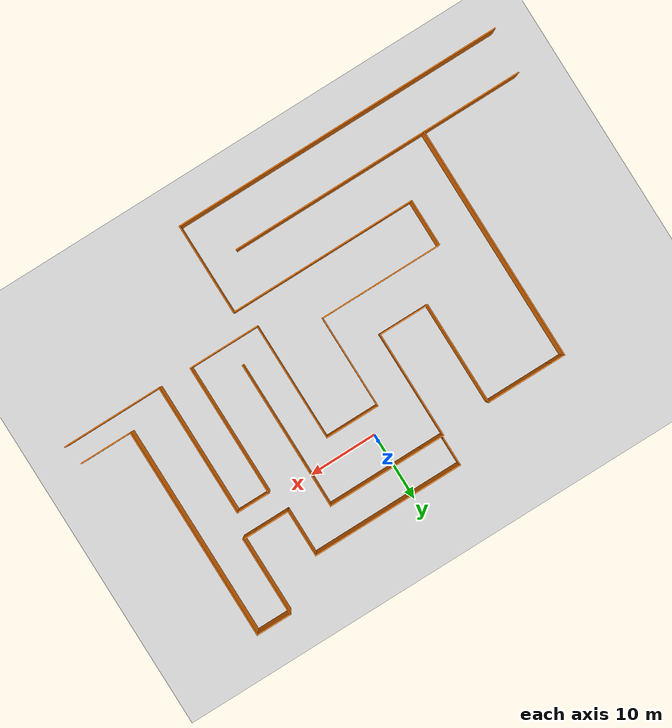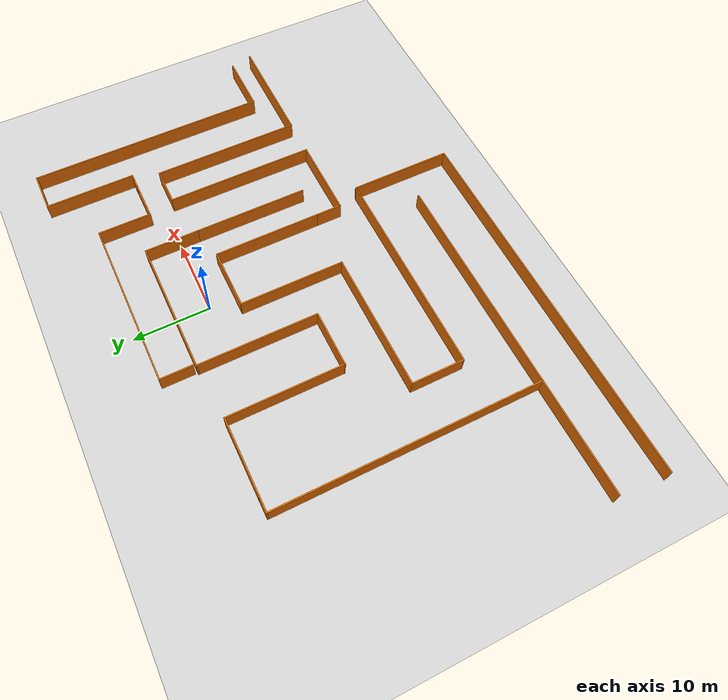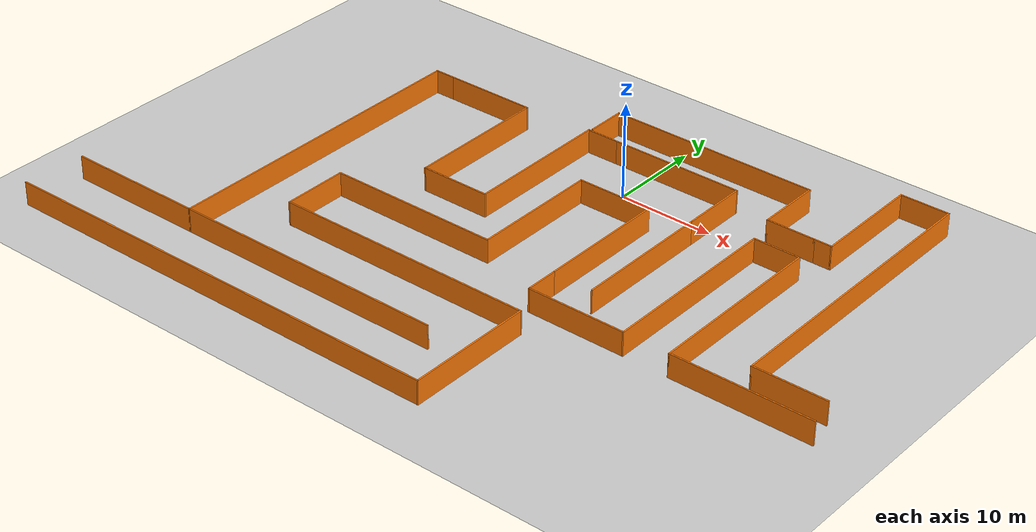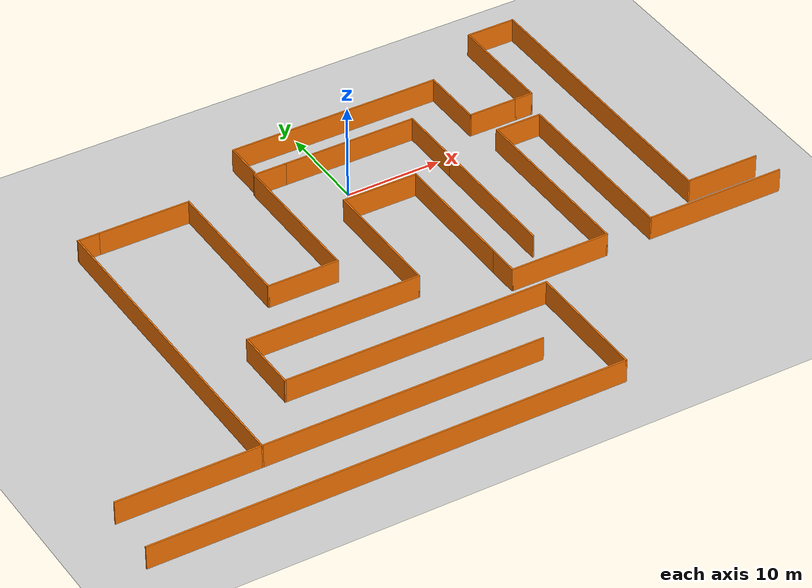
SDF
<sdf version="1.6">
 <world name="default">
  <light name="sun" type="directional">
   <pose>0 0 10 0 -0 0</pose>
   <diffuse>0.8 0.8 0.8 1</diffuse>
   <specular>0.2 0.2 0.2 1</specular>
   <attenuation>
    <range>1000</range>
    <constant>0.9</constant>
    <linear>0.01</linear>
    <quadratic>0.001</quadratic>
   </attenuation>
   <direction>-0.5 0.1 -0.9</direction>
  </light>
  <model name="ground_plane">
   <static>1</static>
   <link name="link">
    <collision name="collision">
     <geometry><plane><normal>0 0 1</normal><size>100 100</size></plane></geometry>
     <surface>
      <contact><collide_bitmask>65535</collide_bitmask></contact>
      <friction><ode><mu>100</mu><mu2>50</mu2></ode></friction>
     </surface>
    </collision>
    <visual name="visual">
     <cast_shadows>0</cast_shadows>
     <geometry><plane><normal>0 0 1</normal><size>100 100</size></plane></geometry>
     <material>
      <script><uri>file://media/materials/scripts/gazebo.material</uri><name>Gazebo/Grey</name></script>
     </material>
    </visual>
   </link>
  </model>
  <gravity>0 0 -9.8</gravity>
  <magnetic_field>6e-06 2.3e-05 -4.2e-05</magnetic_field>
  <atmosphere type="adiabatic"/>
  <physics name="default_physics" default="0" type="ode">
   <max_step_size>0.001</max_step_size>
   <real_time_factor>1</real_time_factor>
   <real_time_update_rate>1000</real_time_update_rate>
  </physics>
  <scene><ambient>0.4 0.4 0.4 1</ambient><background>0.7 0.7 0.7 1</background><shadows>1</shadows></scene>
  <audio><device>default</device></audio>
  <spherical_coordinates>
   <surface_model>EARTH_WGS84</surface_model>
   <latitude_deg>0</latitude_deg>
   <longitude_deg>0</longitude_deg>
   <elevation>0</elevation>
   <heading_deg>0</heading_deg>
  </spherical_coordinates>
  <model name="Maze">
   <pose>-3.25872 -11.7281 0 0 -0 0</pose>
   <link name="Wall_100">
    <collision name="Wall_100_Collision">
     <geometry><box><size>7.25 0.15 2.5</size></box></geometry>
     <pose>0 0 1.25 0 -0 0</pose>
    </collision>
    <visual name="Wall_100_Visual">
     <pose>0 0 1.25 0 -0 0</pose>
     <geometry><box><size>7.25 0.15 2.5</size></box></geometry>
     <material>
      <script><uri>file://media/materials/scripts/gazebo.material</uri><name>Gazebo/Grey</name></script>
      <ambient>0.996078 0.47451 0.0196078 1</ambient>
     </material>
     <meta><layer>0</layer></meta>
    </visual>
    <pose>13.05 12.6653 0 0 -0 1.5708</pose>
   </link>
   <link name="Wall_101">
    <collision name="Wall_101_Collision">
     <geometry><box><size>14.25 0.15 2.5</size></box></geometry>
     <pose>0 0 1.25 0 -0 0</pose>
    </collision>
    <visual name="Wall_101_Visual">
     <pose>0 0 1.25 0 -0 0</pose>
     <geometry><box><size>14.25 0.15 2.5</size></box></geometry>
     <material>
      <script><uri>file://media/materials/scripts/gazebo.material</uri><name>Gazebo/Grey</name></script>
      <ambient>0.996078 0.47451 0.0196078 1</ambient>
     </material>
     <meta><layer>0</layer></meta>
    </visual>
    <pose>6 16.2153 0 0 -0 3.14159</pose>
   </link>
   <link name="Wall_102">
    <collision name="Wall_102_Collision">
     <geometry><box><size>3.5 0.15 2.5</size></box></geometry>
     <pose>0 0 1.25 0 -0 0</pose>
    </collision>
    <visual name="Wall_102_Visual">
     <pose>0 0 1.25 0 -0 0</pose>
     <geometry><box><size>3.5 0.15 2.5</size></box></geometry>
     <material>
      <script><uri>file://media/materials/scripts/gazebo.material</uri><name>Gazebo/Grey</name></script>
      <ambient>0.996078 0.47451 0.0196078 1</ambient>
     </material>
     <meta><layer>0</layer></meta>
    </visual>
    <pose>-2.725 16.2153 0 0 -0 3.14159</pose>
   </link>
   <link name="Wall_103">
    <collision name="Wall_103_Collision">
     <geometry><box><size>15.75 0.15 2.5</size></box></geometry>
     <pose>0 0 1.25 0 -0 0</pose>
    </collision>
    <visual name="Wall_103_Visual">
     <pose>0 0 1.25 0 -0 0</pose>
     <geometry><box><size>15.75 0.15 2.5</size></box></geometry>
     <material>
      <script><uri>file://media/materials/scripts/gazebo.material</uri><name>Gazebo/Grey</name></script>
      <ambient>0.996078 0.47451 0.0196078 1</ambient>
     </material>
     <meta><layer>0</layer></meta>
    </visual>
    <pose>-4.4 8.41528 0 0 -0 -1.5708</pose>
   </link>
   <link name="Wall_104">
    <collision name="Wall_104_Collision">
     <geometry><box><size>7.5 0.15 2.5</size></box></geometry>
     <pose>0 0 1.25 0 -0 0</pose>
    </collision>
    <visual name="Wall_104_Visual">
     <pose>0 0 1.25 0 -0 0</pose>
     <geometry><box><size>7.5 0.15 2.5</size></box></geometry>
     <material>
      <script><uri>file://media/materials/scripts/gazebo.material</uri><name>Gazebo/Grey</name></script>
      <ambient>0.996078 0.47451 0.0196078 1</ambient>
     </material>
     <meta><layer>0</layer></meta>
    </visual>
    <pose>-8.075 0.615279 0 0 -0 3.14159</pose>
   </link>
   <link name="Wall_105">
    <collision name="Wall_105_Collision">
     <geometry><box><size>15.25 0.15 2.5</size></box></geometry>
     <pose>0 0 1.25 0 -0 0</pose>
    </collision>
    <visual name="Wall_105_Visual">
     <pose>0 0 1.25 0 -0 0</pose>
     <geometry><box><size>15.25 0.15 2.5</size></box></geometry>
     <material>
      <script><uri>file://media/materials/scripts/gazebo.material</uri><name>Gazebo/Grey</name></script>
      <ambient>0.996078 0.47451 0.0196078 1</ambient>
     </material>
     <meta><layer>0</layer></meta>
    </visual>
    <pose>-11.75 8.16528 0 0 -0 1.5708</pose>
   </link>
   <link name="Wall_106">
    <collision name="Wall_106_Collision">
     <geometry><box><size>9.75 0.15 2.5</size></box></geometry>
     <pose>0 0 1.25 0 -0 0</pose>
    </collision>
    <visual name="Wall_106_Visual">
     <pose>0 0 1.25 0 -0 0</pose>
     <geometry><box><size>9.75 0.15 2.5</size></box></geometry>
     <material>
      <script><uri>file://media/materials/scripts/gazebo.material</uri><name>Gazebo/Grey</name></script>
      <ambient>0.996078 0.47451 0.0196078 1</ambient>
     </material>
     <meta><layer>0</layer></meta>
    </visual>
    <pose>-16.55 15.7153 0 0 -0 3.14159</pose>
   </link>
   <link name="Wall_107">
    <collision name="Wall_107_Collision">
     <geometry><box><size>2.25 0.15 2.5</size></box></geometry>
     <pose>0 0 1.25 0 -0 0</pose>
    </collision>
    <visual name="Wall_107_Visual">
     <pose>0 0 1.25 0 -0 0</pose>
     <geometry><box><size>2.25 0.15 2.5</size></box></geometry>
     <material>
      <script><uri>file://media/materials/scripts/gazebo.material</uri><name>Gazebo/Grey</name></script>
      <ambient>0.996078 0.47451 0.0196078 1</ambient>
     </material>
     <meta><layer>0</layer></meta>
    </visual>
    <pose>-22.4 15.7153 0 0 -0 3.14159</pose>
   </link>
   <link name="Wall_108">
    <collision name="Wall_108_Collision">
     <geometry><box><size>34.75 0.15 2.5</size></box></geometry>
     <pose>0 0 1.25 0 -0 0</pose>
    </collision>
    <visual name="Wall_108_Visual">
     <pose>0 0 1.25 0 -0 0</pose>
     <geometry><box><size>34.75 0.15 2.5</size></box></geometry>
     <material>
      <script><uri>file://media/materials/scripts/gazebo.material</uri><name>Gazebo/Grey</name></script>
      <ambient>0.996078 0.47451 0.0196078 1</ambient>
     </material>
     <meta><layer>0</layer></meta>
    </visual>
    <pose>-23.45 -1.58472 0 0 -0 -1.5708</pose>
   </link>
   <link name="Wall_109">
    <collision name="Wall_109_Collision">
     <geometry><box><size>29.25 0.15 2.5</size></box></geometry>
     <pose>0 0 1.25 0 -0 0</pose>
    </collision>
    <visual name="Wall_109_Visual">
     <pose>0 0 1.25 0 -0 0</pose>
     <geometry><box><size>29.25 0.15 2.5</size></box></geometry>
     <material>
      <script><uri>file://media/materials/scripts/gazebo.material</uri><name>Gazebo/Grey</name></script>
      <ambient>0.996078 0.47451 0.0196078 1</ambient>
     </material>
     <meta><layer>0</layer></meta>
    </visual>
    <pose>-8.9 -18.8847 0 0 -0 0</pose>
   </link>
   <link name="Wall_113">
    <collision name="Wall_113_Collision">
     <geometry><box><size>3.5 0.15 2.5</size></box></geometry>
     <pose>0 0 1.25 0 -0 0</pose>
    </collision>
    <visual name="Wall_113_Visual">
     <pose>0 0 1.25 0 -0 0</pose>
     <geometry><box><size>3.5 0.15 2.5</size></box></geometry>
     <material>
      <script><uri>file://media/materials/scripts/gazebo.material</uri><name>Gazebo/Grey</name></script>
      <ambient>0.996078 0.47451 0.0196078 1</ambient>
     </material>
     <meta><layer>0</layer></meta>
    </visual>
    <pose>8.7 -7.22502 0 0 -0 -1.5708</pose>
   </link>
   <link name="Wall_114">
    <collision name="Wall_114_Collision">
     <geometry><box><size>10.5 0.15 2.5</size></box></geometry>
     <pose>0 0 1.25 0 -0 0</pose>
    </collision>
    <visual name="Wall_114_Visual">
     <pose>0 0 1.25 0 -0 0</pose>
     <geometry><box><size>10.5 0.15 2.5</size></box></geometry>
     <material>
      <script><uri>file://media/materials/scripts/gazebo.material</uri><name>Gazebo/Grey</name></script>
      <ambient>0.996078 0.47451 0.0196078 1</ambient>
     </material>
     <meta><layer>0</layer></meta>
    </visual>
    <pose>13.875 -8.90002 0 0 -0 0</pose>
   </link>
   <link name="Wall_115">
    <collision name="Wall_115_Collision">
     <geometry><box><size>19.5 0.15 2.5</size></box></geometry>
     <pose>0 0 1.25 0 -0 0</pose>
    </collision>
    <visual name="Wall_115_Visual">
     <pose>0 0 1.25 0 -0 0</pose>
     <geometry><box><size>19.5 0.15 2.5</size></box></geometry>
     <material>
      <script><uri>file://media/materials/scripts/gazebo.material</uri><name>Gazebo/Grey</name></script>
      <ambient>0.996078 0.47451 0.0196078 1</ambient>
     </material>
     <meta><layer>0</layer></meta>
    </visual>
    <pose>19.05 0.774975 0 0 -0 1.5708</pose>
   </link>
   <link name="Wall_116">
    <collision name="Wall_116_Collision">
     <geometry><box><size>5 0.15 2.5</size></box></geometry>
     <pose>0 0 1.25 0 -0 0</pose>
    </collision>
    <visual name="Wall_116_Visual">
     <pose>0 0 1.25 0 -0 0</pose>
     <geometry><box><size>5 0.15 2.5</size></box></geometry>
     <material>
      <script><uri>file://media/materials/scripts/gazebo.material</uri><name>Gazebo/Grey</name></script>
      <ambient>0.996078 0.47451 0.0196078 1</ambient>
     </material>
     <meta><layer>0</layer></meta>
    </visual>
    <pose>21.475 10.45 0 0 -0 0</pose>
   </link>
   <link name="Wall_117">
    <collision name="Wall_117_Collision">
     <geometry><box><size>19.5 0.15 2.5</size></box></geometry>
     <pose>0 0 1.25 0 -0 0</pose>
    </collision>
    <visual name="Wall_117_Visual">
     <pose>0 0 1.25 0 -0 0</pose>
     <geometry><box><size>19.5 0.15 2.5</size></box></geometry>
     <material>
      <script><uri>file://media/materials/scripts/gazebo.material</uri><name>Gazebo/Grey</name></script>
      <ambient>0.996078 0.47451 0.0196078 1</ambient>
     </material>
     <meta><layer>0</layer></meta>
    </visual>
    <pose>23.9 0.774975 0 0 -0 -1.5708</pose>
   </link>
   <link name="Wall_118">
    <collision name="Wall_118_Collision">
     <geometry><box><size>14.75 0.15 2.5</size></box></geometry>
     <pose>0 0 1.25 0 -0 0</pose>
    </collision>
    <visual name="Wall_118_Visual">
     <pose>0 0 1.25 0 -0 0</pose>
     <geometry><box><size>14.75 0.15 2.5</size></box></geometry>
     <material>
      <script><uri>file://media/materials/scripts/gazebo.material</uri><name>Gazebo/Grey</name></script>
      <ambient>0.996078 0.47451 0.0196078 1</ambient>
     </material>
     <meta><layer>0</layer></meta>
    </visual>
    <pose>31.2 -8.90002 0 0 -0 0</pose>
   </link>
   <link name="Wall_120">
    <collision name="Wall_120_Collision">
     <geometry><box><size>4.25 0.15 2.5</size></box></geometry>
     <pose>0 0 1.25 0 -0 0</pose>
    </collision>
    <visual name="Wall_120_Visual">
     <pose>0 0 1.25 0 -0 0</pose>
     <geometry><box><size>4.25 0.15 2.5</size></box></geometry>
     <material>
      <script><uri>file://media/materials/scripts/gazebo.material</uri><name>Gazebo/Grey</name></script>
      <ambient>0.996078 0.47451 0.0196078 1</ambient>
     </material>
     <meta><layer>0</layer></meta>
    </visual>
    <pose>-4.19132 18.6347 0 0 -0 1.5708</pose>
   </link>
   <link name="Wall_121">
    <collision name="Wall_121_Collision">
     <geometry><box><size>22.5 0.15 2.5</size></box></geometry>
     <pose>0 0 1.25 0 -0 0</pose>
    </collision>
    <visual name="Wall_121_Visual">
     <pose>0 0 1.25 0 -0 0</pose>
     <geometry><box><size>22.5 0.15 2.5</size></box></geometry>
     <material>
      <script><uri>file://media/materials/scripts/gazebo.material</uri><name>Gazebo/Grey</name></script>
      <ambient>0.996078 0.47451 0.0196078 1</ambient>
     </material>
     <meta><layer>0</layer></meta>
    </visual>
    <pose>6.98368 20.6847 0 0 -0 0</pose>
   </link>
   <link name="Wall_122">
    <collision name="Wall_122_Collision">
     <geometry><box><size>7 0.15 2.5</size></box></geometry>
     <pose>0 0 1.25 0 -0 0</pose>
    </collision>
    <visual name="Wall_122_Visual">
     <pose>0 0 1.25 0 -0 0</pose>
     <geometry><box><size>7 0.15 2.5</size></box></geometry>
     <material>
      <script><uri>file://media/materials/scripts/gazebo.material</uri><name>Gazebo/Grey</name></script>
      <ambient>0.996078 0.47451 0.0196078 1</ambient>
     </material>
     <meta><layer>0</layer></meta>
    </visual>
    <pose>18.1587 17.2597 0 0 -0 -1.5708</pose>
   </link>
   <link name="Wall_123">
    <collision name="Wall_123_Collision">
     <geometry><box><size>5.25 0.15 2.5</size></box></geometry>
     <pose>0 0 1.25 0 -0 0</pose>
    </collision>
    <visual name="Wall_123_Visual">
     <pose>0 0 1.25 0 -0 0</pose>
     <geometry><box><size>5.25 0.15 2.5</size></box></geometry>
     <material>
      <script><uri>file://media/materials/scripts/gazebo.material</uri><name>Gazebo/Grey</name></script>
      <ambient>0.996078 0.47451 0.0196078 1</ambient>
     </material>
     <meta><layer>0</layer></meta>
    </visual>
    <pose>20.7087 13.8347 0 0 -0 0</pose>
   </link>
   <link name="Wall_124">
    <collision name="Wall_124_Collision">
     <geometry><box><size>2 0.15 2.5</size></box></geometry>
     <pose>0 0 1.25 0 -0 0</pose>
    </collision>
    <visual name="Wall_124_Visual">
     <pose>0 0 1.25 0 -0 0</pose>
     <geometry><box><size>2 0.15 2.5</size></box></geometry>
     <material>
      <script><uri>file://media/materials/scripts/gazebo.material</uri><name>Gazebo/Grey</name></script>
      <ambient>0.996078 0.47451 0.0196078 1</ambient>
     </material>
     <meta><layer>0</layer></meta>
    </visual>
    <pose>24.1837 13.8347 0 0 -0 0</pose>
   </link>
   <link name="Wall_125">
    <collision name="Wall_125_Collision">
     <geometry><box><size>11.75 0.15 2.5</size></box></geometry>
     <pose>0 0 1.25 0 -0 0</pose>
    </collision>
    <visual name="Wall_125_Visual">
     <pose>0 0 1.25 0 -0 0</pose>
     <geometry><box><size>11.75 0.15 2.5</size></box></geometry>
     <material>
      <script><uri>file://media/materials/scripts/gazebo.material</uri><name>Gazebo/Grey</name></script>
      <ambient>0.996078 0.47451 0.0196078 1</ambient>
     </material>
     <meta><layer>0</layer></meta>
    </visual>
    <pose>25.1087 19.6347 0 0 -0 1.5708</pose>
   </link>
   <link name="Wall_126">
    <collision name="Wall_126_Collision">
     <geometry><box><size>5.25 0.15 2.5</size></box></geometry>
     <pose>0 0 1.25 0 -0 0</pose>
    </collision>
    <visual name="Wall_126_Visual">
     <pose>0 0 1.25 0 -0 0</pose>
     <geometry><box><size>5.25 0.15 2.5</size></box></geometry>
     <material>
      <script><uri>file://media/materials/scripts/gazebo.material</uri><name>Gazebo/Grey</name></script>
      <ambient>0.996078 0.47451 0.0196078 1</ambient>
     </material>
     <meta><layer>0</layer></meta>
    </visual>
    <pose>27.6587 25.4347 0 0 -0 0</pose>
   </link>
   <link name="Wall_127">
    <collision name="Wall_127_Collision">
     <geometry><box><size>31.5 0.15 2.5</size></box></geometry>
     <pose>0 0 1.25 0 -0 0</pose>
    </collision>
    <visual name="Wall_127_Visual">
     <pose>0 0 1.25 0 -0 0</pose>
     <geometry><box><size>31.5 0.15 2.5</size></box></geometry>
     <material>
      <script><uri>file://media/materials/scripts/gazebo.material</uri><name>Gazebo/Grey</name></script>
      <ambient>0.996078 0.47451 0.0196078 1</ambient>
     </material>
     <meta><layer>0</layer></meta>
    </visual>
    <pose>30.2087 9.75972 0 0 -0 -1.5708</pose>
   </link>
   <link name="Wall_128">
    <collision name="Wall_128_Collision">
     <geometry><box><size>7.75 0.15 2.5</size></box></geometry>
     <pose>0 0 1.25 0 -0 0</pose>
    </collision>
    <visual name="Wall_128_Visual">
     <pose>0 0 1.25 0 -0 0</pose>
     <geometry><box><size>7.75 0.15 2.5</size></box></geometry>
     <material>
      <script><uri>file://media/materials/scripts/gazebo.material</uri><name>Gazebo/Grey</name></script>
      <ambient>0.996078 0.47451 0.0196078 1</ambient>
     </material>
     <meta><layer>0</layer></meta>
    </visual>
    <pose>34.0087 -5.91528 0 0 -0 0</pose>
   </link>
   <link name="Wall_133">
    <collision name="Wall_133_Collision">
     <geometry><box><size>14.75 0.15 2.5</size></box></geometry>
     <pose>0 0 1.25 0 -0 0</pose>
    </collision>
    <visual name="Wall_133_Visual">
     <pose>0 0 1.25 0 -0 0</pose>
     <geometry><box><size>14.75 0.15 2.5</size></box></geometry>
     <material>
      <script><uri>file://media/materials/scripts/gazebo.material</uri><name>Gazebo/Grey</name></script>
      <ambient>0.996078 0.47451 0.0196078 1</ambient>
     </material>
     <meta><layer>0</layer></meta>
    </visual>
    <pose>-30.75 -18.8847 0 0 -0 3.14159</pose>
   </link>
   <link name="Wall_90">
    <collision name="Wall_90_Collision">
     <geometry><box><size>49 0.15 2.5</size></box></geometry>
     <pose>0 0 1.25 0 -0 0</pose>
    </collision>
    <visual name="Wall_90_Visual">
     <pose>0 0 1.25 0 -0 0</pose>
     <geometry><box><size>49 0.15 2.5</size></box></geometry>
     <material>
      <script><uri>file://media/materials/scripts/gazebo.material</uri><name>Gazebo/Grey</name></script>
      <ambient>0.996078 0.47451 0.0196078 1</ambient>
     </material>
     <meta><layer>0</layer></meta>
    </visual>
    <pose>-14.075 -25.4347 0 0 -0 0</pose>
   </link>
   <link name="Wall_91">
    <collision name="Wall_91_Collision">
     <geometry><box><size>13.5 0.15 2.5</size></box></geometry>
     <pose>0 0 1.25 0 -0 0</pose>
    </collision>
    <visual name="Wall_91_Visual">
     <pose>0 0 1.25 0 -0 0</pose>
     <geometry><box><size>13.5 0.15 2.5</size></box></geometry>
     <material>
      <script><uri>file://media/materials/scripts/gazebo.material</uri><name>Gazebo/Grey</name></script>
      <ambient>0.996078 0.47451 0.0196078 1</ambient>
     </material>
     <meta><layer>0</layer></meta>
    </visual>
    <pose>10.35 -18.7597 0 0 -0 1.5708</pose>
   </link>
   <link name="Wall_92">
    <collision name="Wall_92_Collision">
     <geometry><box><size>27.75 0.15 2.5</size></box></geometry>
     <pose>0 0 1.25 0 -0 0</pose>
    </collision>
    <visual name="Wall_92_Visual">
     <pose>0 0 1.25 0 -0 0</pose>
     <geometry><box><size>27.75 0.15 2.5</size></box></geometry>
     <material>
      <script><uri>file://media/materials/scripts/gazebo.material</uri><name>Gazebo/Grey</name></script>
      <ambient>0.996078 0.47451 0.0196078 1</ambient>
     </material>
     <meta><layer>0</layer></meta>
    </visual>
    <pose>-3.45 -12.0847 0 0 -0 3.14159</pose>
   </link>
   <link name="Wall_93">
    <collision name="Wall_93_Collision">
     <geometry><box><size>7 0.15 2.5</size></box></geometry>
     <pose>0 0 1.25 0 -0 0</pose>
    </collision>
    <visual name="Wall_93_Visual">
     <pose>0 0 1.25 0 -0 0</pose>
     <geometry><box><size>7 0.15 2.5</size></box></geometry>
     <material>
      <script><uri>file://media/materials/scripts/gazebo.material</uri><name>Gazebo/Grey</name></script>
      <ambient>0.996078 0.47451 0.0196078 1</ambient>
     </material>
     <meta><layer>0</layer></meta>
    </visual>
    <pose>-17.25 -8.65972 0 0 -0 1.5708</pose>
   </link>
   <link name="Wall_94">
    <collision name="Wall_94_Collision">
     <geometry><box><size>18.25 0.15 2.5</size></box></geometry>
     <pose>0 0 1.25 0 -0 0</pose>
    </collision>
    <visual name="Wall_94_Visual">
     <pose>0 0 1.25 0 -0 0</pose>
     <geometry><box><size>18.25 0.15 2.5</size></box></geometry>
     <material>
      <script><uri>file://media/materials/scripts/gazebo.material</uri><name>Gazebo/Grey</name></script>
      <ambient>0.996078 0.47451 0.0196078 1</ambient>
     </material>
     <meta><layer>0</layer></meta>
    </visual>
    <pose>-8.2 -5.23472 0 0 -0 0</pose>
   </link>
   <link name="Wall_95">
    <collision name="Wall_95_Collision">
     <geometry><box><size>13.75 0.15 2.5</size></box></geometry>
     <pose>0 0 1.25 0 -0 0</pose>
    </collision>
    <visual name="Wall_95_Visual">
     <pose>0 0 1.25 0 -0 0</pose>
     <geometry><box><size>13.75 0.15 2.5</size></box></geometry>
     <material>
      <script><uri>file://media/materials/scripts/gazebo.material</uri><name>Gazebo/Grey</name></script>
      <ambient>0.996078 0.47451 0.0196078 1</ambient>
     </material>
     <meta><layer>0</layer></meta>
    </visual>
    <pose>0.85 1.56528 0 0 -0 1.5708</pose>
   </link>
   <link name="Wall_96">
    <collision name="Wall_96_Collision">
     <geometry><box><size>8 0.15 2.5</size></box></geometry>
     <pose>0 0 1.25 0 -0 0</pose>
    </collision>
    <visual name="Wall_96_Visual">
     <pose>0 0 1.25 0 -0 0</pose>
     <geometry><box><size>8 0.15 2.5</size></box></geometry>
     <material>
      <script><uri>file://media/materials/scripts/gazebo.material</uri><name>Gazebo/Grey</name></script>
      <ambient>0.996078 0.47451 0.0196078 1</ambient>
     </material>
     <meta><layer>0</layer></meta>
    </visual>
    <pose>4.775 8.36528 0 0 -0 0</pose>
   </link>
   <link name="Wall_97">
    <collision name="Wall_97_Collision">
     <geometry><box><size>14.0654 0.15 2.5</size></box></geometry>
     <pose>0 0 1.25 0 -0 0</pose>
    </collision>
    <visual name="Wall_97_Visual">
     <pose>0 0 1.25 0 -0 0</pose>
     <geometry><box><size>14.0654 0.15 2.5</size></box></geometry>
     <material>
      <script><uri>file://media/materials/scripts/gazebo.material</uri><name>Gazebo/Grey</name></script>
      <ambient>0.996078 0.47451 0.0196078 1</ambient>
     </material>
     <meta><layer>0</layer></meta>
    </visual>
    <pose>8.7 1.40763 0 0 -0 -1.5708</pose>
   </link>
   <link name="Wall_99">
    <collision name="Wall_99_Collision">
     <geometry><box><size>14.8154 0.15 2.5</size></box></geometry>
     <pose>0 0 1.25 0 -0 0</pose>
    </collision>
    <visual name="Wall_99_Visual">
     <pose>0 0 1.25 0 -0 0</pose>
     <geometry><box><size>14.8154 0.15 2.5</size></box></geometry>
     <material>
      <script><uri>file://media/materials/scripts/gazebo.material</uri><name>Gazebo/Grey</name></script>
      <ambient>0.996078 0.47451 0.0196078 1</ambient>
     </material>
     <meta><layer>0</layer></meta>
    </visual>
    <pose>13.05 1.78263 0 0 -0 1.5708</pose>
   </link>
   <static>1</static>
  </model>
 </world>
</sdf>
